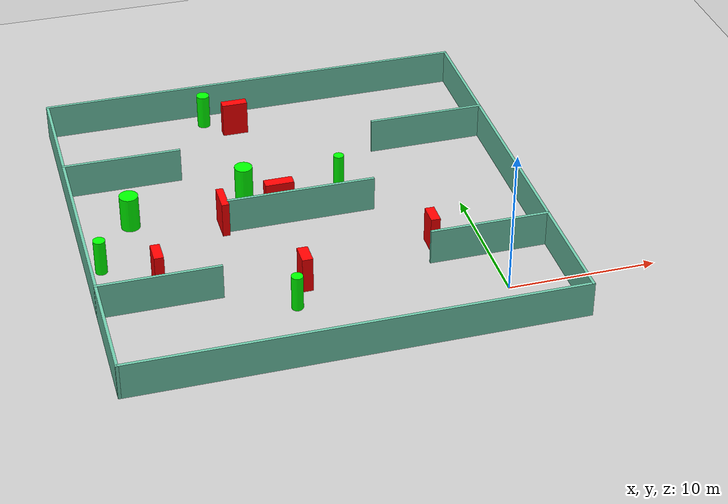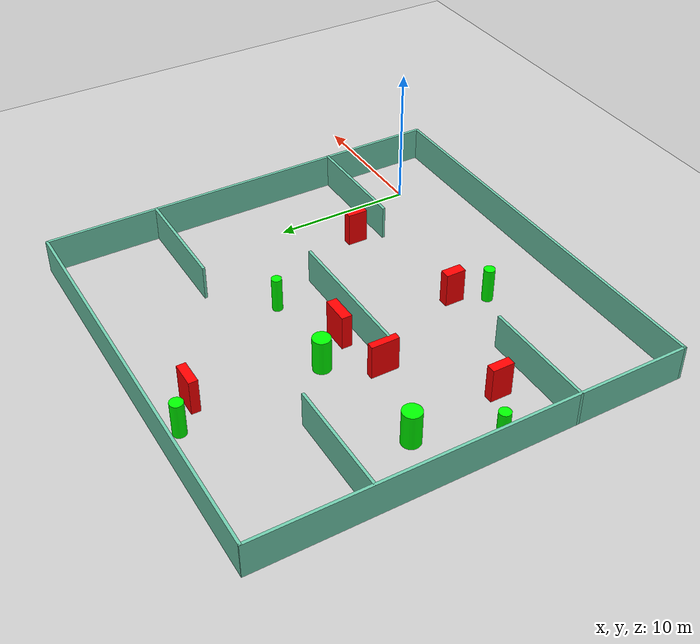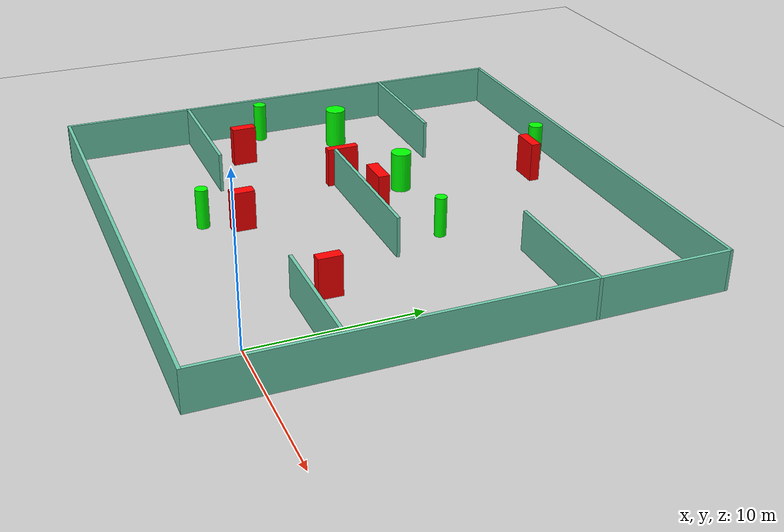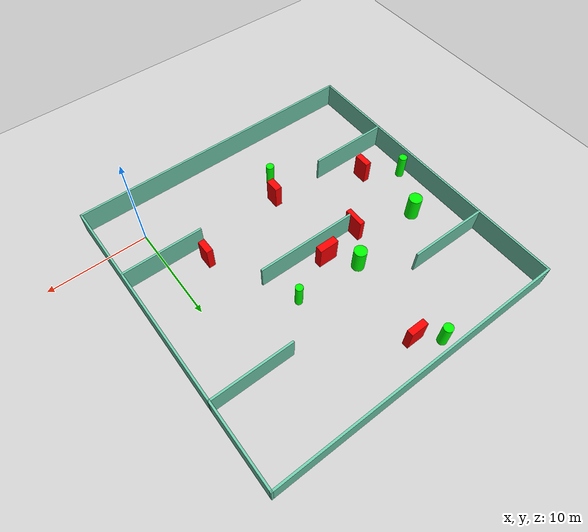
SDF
<sdf version="1.7">
 <world name="default">
  <light name="sun" type="directional">
   <pose>0 0 10 0 -0 0</pose>
   <diffuse>0.8 0.8 0.8 1</diffuse>
   <specular>0.2 0.2 0.2 1</specular>
   <attenuation>
    <range>1000</range>
    <constant>0.9</constant>
    <linear>0.01</linear>
    <quadratic>0.001</quadratic>
   </attenuation>
   <direction>-0.5 0.1 -0.9</direction>
   <spot><inner_angle>0</inner_angle><outer_angle>0</outer_angle><falloff>0</falloff></spot>
  </light>
  <model name="ground_plane">
   <static>1</static>
   <link name="link">
    <collision name="collision">
     <geometry><plane><normal>0 0 1</normal><size>100 100</size></plane></geometry>
     <surface>
      <contact><collide_bitmask>65535</collide_bitmask></contact>
      <friction><ode><mu>100</mu><mu2>50</mu2></ode></friction>
     </surface>
    </collision>
    <visual name="visual">
     <cast_shadows>0</cast_shadows>
     <geometry><plane><normal>0 0 1</normal><size>100 100</size></plane></geometry>
     <material>
      <script><uri>file://media/materials/scripts/gazebo.material</uri><name>Gazebo/Grey</name></script>
     </material>
    </visual>
   </link>
  </model>
  <gravity>0 0 -9.8</gravity>
  <magnetic_field>6e-06 2.3e-05 -4.2e-05</magnetic_field>
  <atmosphere type="adiabatic"/>
  <physics type="ode">
   <max_step_size>0.001</max_step_size>
   <real_time_factor>1</real_time_factor>
   <real_time_update_rate>1000</real_time_update_rate>
  </physics>
  <scene><ambient>0.4 0.4 0.4 1</ambient><background>0.7 0.7 0.7 1</background><shadows>1</shadows></scene>
  <spherical_coordinates>
   <surface_model>EARTH_WGS84</surface_model>
   <latitude_deg>0</latitude_deg>
   <longitude_deg>0</longitude_deg>
   <elevation>0</elevation>
   <heading_deg>0</heading_deg>
  </spherical_coordinates>
  <model name="my_base_walls">
   <link name="Wall_10">
    <collision name="Wall_10_Collision">
     <geometry><box><size>8.2 0.2 2.5</size></box></geometry>
     <pose>0 0 1.25 0 -0 0</pose>
    </collision>
    <visual name="Wall_10_Visual">
     <pose>0 0 1.25 0 -0 0</pose>
     <geometry><box><size>8.2 0.2 2.5</size></box></geometry>
     <material>
      <script><uri>file://media/materials/scripts/gazebo.material</uri><name>Gazebo/Grey</name></script>
      <ambient>0.435294 0.796078 0.67451 1</ambient>
     </material>
     <meta><layer>0</layer></meta>
    </visual>
    <pose>-11 -7 0 0 -0 0</pose>
   </link>
   <link name="Wall_12">
    <collision name="Wall_12_Collision">
     <geometry><box><size>8.2 0.2 2.5</size></box></geometry>
     <pose>0 0 1.25 0 -0 0</pose>
    </collision>
    <visual name="Wall_12_Visual">
     <pose>0 0 1.25 0 -0 0</pose>
     <geometry><box><size>8.2 0.2 2.5</size></box></geometry>
     <material>
      <script><uri>file://media/materials/scripts/gazebo.material</uri><name>Gazebo/Grey</name></script>
      <ambient>0.435294 0.796078 0.67451 1</ambient>
     </material>
     <meta><layer>0</layer></meta>
    </visual>
    <pose>-11 7 0 0 -0 0</pose>
   </link>
   <link name="Wall_14">
    <collision name="Wall_14_Collision">
     <geometry><box><size>8.2 0.2 2.5</size></box></geometry>
     <pose>0 0 1.25 0 -0 0</pose>
    </collision>
    <visual name="Wall_14_Visual">
     <pose>0 0 1.25 0 -0 0</pose>
     <geometry><box><size>8.2 0.2 2.5</size></box></geometry>
     <material>
      <script><uri>file://media/materials/scripts/gazebo.material</uri><name>Gazebo/Grey</name></script>
      <ambient>0.435294 0.796078 0.67451 1</ambient>
     </material>
     <meta><layer>0</layer></meta>
    </visual>
    <pose>11 7 0 0 -0 3.14159</pose>
   </link>
   <link name="Wall_16">
    <collision name="Wall_16_Collision">
     <geometry><box><size>10.2 0.2 2.5</size></box></geometry>
     <pose>0 0 1.25 0 -0 0</pose>
    </collision>
    <visual name="Wall_16_Visual">
     <pose>0 0 1.25 0 -0 0</pose>
     <geometry><box><size>10.2 0.2 2.5</size></box></geometry>
     <material>
      <script><uri>file://media/materials/scripts/gazebo.material</uri><name>Gazebo/Grey</name></script>
      <ambient>0.435294 0.796078 0.67451 1</ambient>
     </material>
     <meta><layer>0</layer></meta>
    </visual>
    <pose>0 0 0 0 -0 3.14159</pose>
   </link>
   <link name="Wall_2">
    <collision name="Wall_2_Collision">
     <geometry><box><size>30.2 0.2 2.5</size></box></geometry>
     <pose>0 0 1.25 0 -0 0</pose>
    </collision>
    <visual name="Wall_2_Visual">
     <pose>0 0 1.25 0 -0 0</pose>
     <geometry><box><size>30.2 0.2 2.5</size></box></geometry>
     <material>
      <script><uri>file://media/materials/scripts/gazebo.material</uri><name>Gazebo/Grey</name></script>
      <ambient>0.435294 0.796078 0.67451 1</ambient>
     </material>
     <meta><layer>0</layer></meta>
    </visual>
    <pose>0 -15 0 0 -0 3.14159</pose>
   </link>
   <link name="Wall_3">
    <collision name="Wall_3_Collision">
     <geometry><box><size>30.2 0.2 2.5</size></box></geometry>
     <pose>0 0 1.25 0 -0 0</pose>
    </collision>
    <visual name="Wall_3_Visual">
     <pose>0 0 1.25 0 -0 0</pose>
     <geometry><box><size>30.2 0.2 2.5</size></box></geometry>
     <material>
      <script><uri>file://media/materials/scripts/gazebo.material</uri><name>Gazebo/Grey</name></script>
      <ambient>0.435294 0.796078 0.67451 1</ambient>
     </material>
     <meta><layer>0</layer></meta>
    </visual>
    <pose>-15 0 0 0 -0 1.5708</pose>
   </link>
   <link name="Wall_4">
    <collision name="Wall_4_Collision">
     <geometry><box><size>30.2 0.2 2.5</size></box></geometry>
     <pose>0 0 1.25 0 -0 0</pose>
    </collision>
    <visual name="Wall_4_Visual">
     <pose>0 0 1.25 0 -0 0</pose>
     <geometry><box><size>30.2 0.2 2.5</size></box></geometry>
     <material>
      <script><uri>file://media/materials/scripts/gazebo.material</uri><name>Gazebo/Grey</name></script>
      <ambient>0.435294 0.796078 0.67451 1</ambient>
     </material>
     <meta><layer>0</layer></meta>
    </visual>
    <pose>0 15 0 0 -0 0</pose>
   </link>
   <link name="Wall_6">
    <collision name="Wall_6_Collision">
     <geometry><box><size>30.2 0.2 2.5</size></box></geometry>
     <pose>0 0 1.25 0 -0 0</pose>
    </collision>
    <visual name="Wall_6_Visual">
     <pose>0 0 1.25 0 -0 0</pose>
     <geometry><box><size>30.2 0.2 2.5</size></box></geometry>
     <material>
      <script><uri>file://media/materials/scripts/gazebo.material</uri><name>Gazebo/Grey</name></script>
      <ambient>0.435294 0.796078 0.67451 1</ambient>
     </material>
     <meta><layer>0</layer></meta>
    </visual>
    <pose>15 0 0 0 -0 1.5708</pose>
   </link>
   <link name="Wall_8">
    <collision name="Wall_8_Collision">
     <geometry><box><size>8.2 0.2 2.5</size></box></geometry>
     <pose>0 0 1.25 0 -0 0</pose>
    </collision>
    <visual name="Wall_8_Visual">
     <pose>0 0 1.25 0 -0 0</pose>
     <geometry><box><size>8.2 0.2 2.5</size></box></geometry>
     <material>
      <script><uri>file://media/materials/scripts/gazebo.material</uri><name>Gazebo/Grey</name></script>
      <ambient>0.435294 0.796078 0.67451 1</ambient>
     </material>
     <meta><layer>0</layer></meta>
    </visual>
    <pose>11 -7 0 0 -0 3.14159</pose>
   </link>
   <static>1</static>
   <pose>-11 11 0 0 -0 0</pose>
  </model>
  <model name="cylinder1">
   <static>1</static>
   <link name="link">
    <inertial>
     <mass>1</mass>
     <inertia><ixx>0.5</ixx><ixy>0</ixy><ixz>0</ixz><iyy>0.5</iyy><iyz>0</iyz><izz>1</izz></inertia>
    </inertial>
    <collision name="collision">
     <geometry><cylinder><radius>0.3601382631111023</radius><length>2.5</length></cylinder></geometry>
    </collision>
    <visual name="visual">
     <geometry><cylinder><radius>0.3601382631111023</radius><length>2.5</length></cylinder></geometry>
     <material>
      <ambient>0 1 0 1</ambient>
      <diffuse>0 1 0 1</diffuse>
      <specular>0.1 0.1 0.1 1</specular>
      <emissive>0 0 0 0</emissive>
     </material>
    </visual>
   </link>
   <pose>-7.486923612826672 14.343690216299347 1.25 0 0 0</pose>
  </model>
  <model name="cylinder2">
   <static>1</static>
   <link name="link">
    <inertial>
     <mass>1</mass>
     <inertia><ixx>0.5</ixx><ixy>0</ixy><ixz>0</ixz><iyy>0.5</iyy><iyz>0</iyz><izz>1</izz></inertia>
    </inertial>
    <collision name="collision">
     <geometry><cylinder><radius>0.6534293367630877</radius><length>2.5</length></cylinder></geometry>
    </collision>
    <visual name="visual">
     <geometry><cylinder><radius>0.6534293367630877</radius><length>2.5</length></cylinder></geometry>
     <material>
      <ambient>0 1 0 1</ambient>
      <diffuse>0 1 0 1</diffuse>
      <specular>0.1 0.1 0.1 1</specular>
      <emissive>0 0 0 0</emissive>
     </material>
    </visual>
   </link>
   <pose>-22.326214899889596 13.296516128098048 1.25 0 0 0</pose>
  </model>
  <model name="cylinder3">
   <static>1</static>
   <link name="link">
    <inertial>
     <mass>1</mass>
     <inertia><ixx>0.5</ixx><ixy>0</ixy><ixz>0</ixz><iyy>0.5</iyy><iyz>0</iyz><izz>1</izz></inertia>
    </inertial>
    <collision name="collision">
     <geometry><cylinder><radius>0.3896768647489409</radius><length>2.5</length></cylinder></geometry>
    </collision>
    <visual name="visual">
     <geometry><cylinder><radius>0.3896768647489409</radius><length>2.5</length></cylinder></geometry>
     <material>
      <ambient>0 1 0 1</ambient>
      <diffuse>0 1 0 1</diffuse>
      <specular>0.1 0.1 0.1 1</specular>
      <emissive>0 0 0 0</emissive>
     </material>
    </visual>
   </link>
   <pose>-13.644797622861397 1.6569599603677059 1.25 0 0 0</pose>
  </model>
  <model name="cylinder4">
   <static>1</static>
   <link name="link">
    <inertial>
     <mass>1</mass>
     <inertia><ixx>0.5</ixx><ixy>0</ixy><ixz>0</ixz><iyy>0.5</iyy><iyz>0</iyz><izz>1</izz></inertia>
    </inertial>
    <collision name="collision">
     <geometry><cylinder><radius>0.45236125232132973</radius><length>2.5</length></cylinder></geometry>
    </collision>
    <visual name="visual">
     <geometry><cylinder><radius>0.45236125232132973</radius><length>2.5</length></cylinder></geometry>
     <material>
      <ambient>0 1 0 1</ambient>
      <diffuse>0 1 0 1</diffuse>
      <specular>0.1 0.1 0.1 1</specular>
      <emissive>0 0 0 0</emissive>
     </material>
    </visual>
   </link>
   <pose>-14.920163014137115 24.662270186679045 1.25 0 0 0</pose>
  </model>
  <model name="cylinder5">
   <static>1</static>
   <link name="link">
    <inertial>
     <mass>1</mass>
     <inertia><ixx>0.5</ixx><ixy>0</ixy><ixz>0</ixz><iyy>0.5</iyy><iyz>0</iyz><izz>1</izz></inertia>
    </inertial>
    <collision name="collision">
     <geometry><cylinder><radius>0.40614231227721875</radius><length>2.5</length></cylinder></geometry>
    </collision>
    <visual name="visual">
     <geometry><cylinder><radius>0.40614231227721875</radius><length>2.5</length></cylinder></geometry>
     <material>
      <ambient>0 1 0 1</ambient>
      <diffuse>0 1 0 1</diffuse>
      <specular>0.1 0.1 0.1 1</specular>
      <emissive>0 0 0 0</emissive>
     </material>
    </visual>
   </link>
   <pose>-25.032269684507742 8.749058731682624 1.25 0 0 0</pose>
  </model>
  <model name="cylinder6">
   <static>1</static>
   <link name="link">
    <inertial>
     <mass>1</mass>
     <inertia><ixx>0.5</ixx><ixy>0</ixy><ixz>0</ixz><iyy>0.5</iyy><iyz>0</iyz><izz>1</izz></inertia>
    </inertial>
    <collision name="collision">
     <geometry><cylinder><radius>0.6221848839699973</radius><length>2.5</length></cylinder></geometry>
    </collision>
    <visual name="visual">
     <geometry><cylinder><radius>0.6221848839699973</radius><length>2.5</length></cylinder></geometry>
     <material>
      <ambient>0 1 0 1</ambient>
      <diffuse>0 1 0 1</diffuse>
      <specular>0.1 0.1 0.1 1</specular>
      <emissive>0 0 0 0</emissive>
     </material>
    </visual>
   </link>
   <pose>-14.158854512478172 14.67416316815235 1.25 0 0 0</pose>
  </model>
  <model name="box1">
   <static>1</static>
   <link name="link">
    <inertial>
     <mass>1</mass>
     <inertia><ixx>0.083</ixx><ixy>0</ixy><ixz>0</ixz><iyy>0.083</iyy><iyz>0</iyz><izz>0.083</izz></inertia>
    </inertial>
    <collision name="collision">
     <geometry><box><size>0.642362079865833 1.5351446670301612 2.5</size></box></geometry>
    </collision>
    <visual name="visual">
     <geometry><box><size>0.642362079865833 1.5351446670301612 2.5</size></box></geometry>
     <material>
      <ambient>1 0 0 1</ambient>
      <diffuse>1 0 0 1</diffuse>
      <specular>0.1 0.1 0.1 1</specular>
      <emissive>0 0 0 0</emissive>
     </material>
    </visual>
    <sensor name="my_contact" type="contact">
     <contact><collision>box_collision</collision><topic>__default_topic__</topic></contact>
    </sensor>
   </link>
   <pose>-21.653956382821825 6.574231989890027 1.25 0 0 0</pose>
  </model>
  <model name="box2">
   <static>1</static>
   <link name="link">
    <inertial>
     <mass>1</mass>
     <inertia><ixx>0.083</ixx><ixy>0</ixy><ixz>0</ixz><iyy>0.083</iyy><iyz>0</iyz><izz>0.083</izz></inertia>
    </inertial>
    <collision name="collision">
     <geometry><box><size>0.6501774384436425 1.443432500731422 2.5</size></box></geometry>
    </collision>
    <visual name="visual">
     <geometry><box><size>0.6501774384436425 1.443432500731422 2.5</size></box></geometry>
     <material>
      <ambient>1 0 0 1</ambient>
      <diffuse>1 0 0 1</diffuse>
      <specular>0.1 0.1 0.1 1</specular>
      <emissive>0 0 0 0</emissive>
     </material>
    </visual>
    <sensor name="my_contact" type="contact">
     <contact><collision>box_collision</collision><topic>__default_topic__</topic></contact>
    </sensor>
   </link>
   <pose>-3.3774543113982567 5.896165515788756 1.25 0 0 0</pose>
  </model>
  <model name="box3">
   <static>1</static>
   <link name="link">
    <inertial>
     <mass>1</mass>
     <inertia><ixx>0.083</ixx><ixy>0</ixy><ixz>0</ixz><iyy>0.083</iyy><iyz>0</iyz><izz>0.083</izz></inertia>
    </inertial>
    <collision name="collision">
     <geometry><box><size>0.7204129078955364 1.4314070823719822 2.5</size></box></geometry>
    </collision>
    <visual name="visual">
     <geometry><box><size>0.7204129078955364 1.4314070823719822 2.5</size></box></geometry>
     <material>
      <ambient>1 0 0 1</ambient>
      <diffuse>1 0 0 1</diffuse>
      <specular>0.1 0.1 0.1 1</specular>
      <emissive>0 0 0 0</emissive>
     </material>
    </visual>
    <sensor name="my_contact" type="contact">
     <contact><collision>box_collision</collision><topic>__default_topic__</topic></contact>
    </sensor>
   </link>
   <pose>-12.585338138970904 3.821067702386091 1.25 0 0 0</pose>
  </model>
  <model name="box4">
   <static>1</static>
   <link name="link">
    <inertial>
     <mass>1</mass>
     <inertia><ixx>0.083</ixx><ixy>0</ixy><ixz>0</ixz><iyy>0.083</iyy><iyz>0</iyz><izz>0.083</izz></inertia>
    </inertial>
    <collision name="collision">
     <geometry><box><size>0.5063342101549546 2.0006693809936067 2.5</size></box></geometry>
    </collision>
    <visual name="visual">
     <geometry><box><size>0.5063342101549546 2.0006693809936067 2.5</size></box></geometry>
     <material>
      <ambient>1 0 0 1</ambient>
      <diffuse>1 0 0 1</diffuse>
      <specular>0.1 0.1 0.1 1</specular>
      <emissive>0 0 0 0</emissive>
     </material>
    </visual>
    <sensor name="my_contact" type="contact">
     <contact><collision>box_collision</collision><topic>__default_topic__</topic></contact>
    </sensor>
   </link>
   <pose>-16.305099437972324 11.504441879653708 1.25 0 0 0</pose>
  </model>
  <model name="box5">
   <static>1</static>
   <link name="link">
    <inertial>
     <mass>1</mass>
     <inertia><ixx>0.083</ixx><ixy>0</ixy><ixz>0</ixz><iyy>0.083</iyy><iyz>0</iyz><izz>0.083</izz></inertia>
    </inertial>
    <collision name="collision">
     <geometry><box><size>1.805935343586062 0.6315500139825547 2.5</size></box></geometry>
    </collision>
    <visual name="visual">
     <geometry><box><size>1.805935343586062 0.6315500139825547 2.5</size></box></geometry>
     <material>
      <ambient>1 0 0 1</ambient>
      <diffuse>1 0 0 1</diffuse>
      <specular>0.1 0.1 0.1 1</specular>
      <emissive>0 0 0 0</emissive>
     </material>
    </visual>
    <sensor name="my_contact" type="contact">
     <contact><collision>box_collision</collision><topic>__default_topic__</topic></contact>
    </sensor>
   </link>
   <pose>-12.947681663129138 23.11933756545327 1.25 0 0 0</pose>
  </model>
  <model name="box6">
   <static>1</static>
   <link name="link">
    <inertial>
     <mass>1</mass>
     <inertia><ixx>0.083</ixx><ixy>0</ixy><ixz>0</ixz><iyy>0.083</iyy><iyz>0</iyz><izz>0.083</izz></inertia>
    </inertial>
    <collision name="collision">
     <geometry><box><size>1.9831768448322846 0.7281715317589501 2.5</size></box></geometry>
    </collision>
    <visual name="visual">
     <geometry><box><size>1.9831768448322846 0.7281715317589501 2.5</size></box></geometry>
     <material>
      <ambient>1 0 0 1</ambient>
      <diffuse>1 0 0 1</diffuse>
      <specular>0.1 0.1 0.1 1</specular>
      <emissive>0 0 0 0</emissive>
     </material>
    </visual>
    <sensor name="my_contact" type="contact">
     <contact><collision>box_collision</collision><topic>__default_topic__</topic></contact>
    </sensor>
   </link>
   <pose>-12.236016044226288 12.32741778957739 1.25 0 0 0</pose>
  </model>
 </world>
</sdf>
